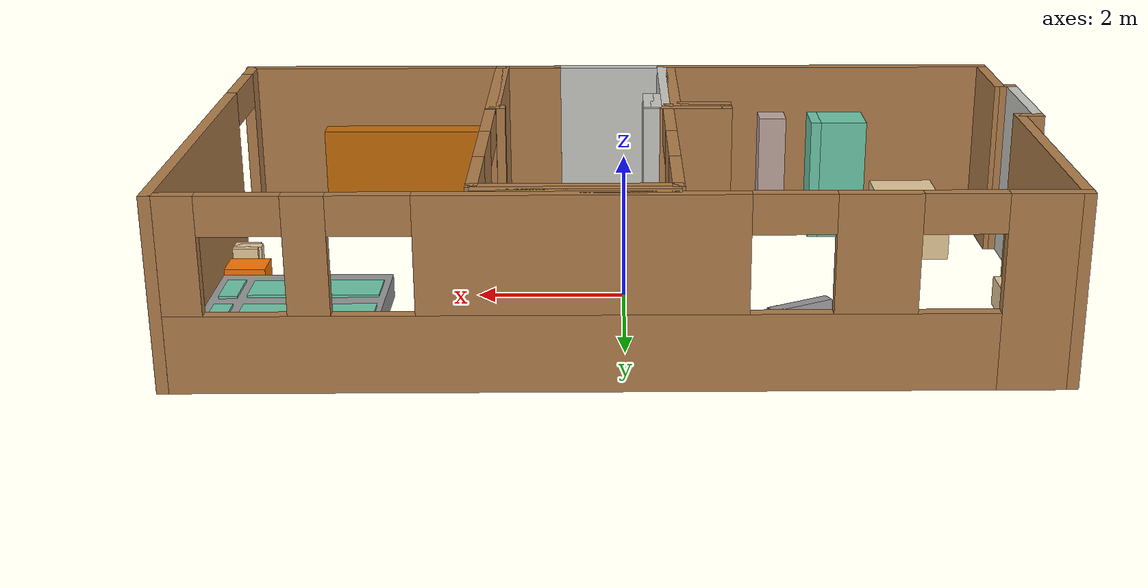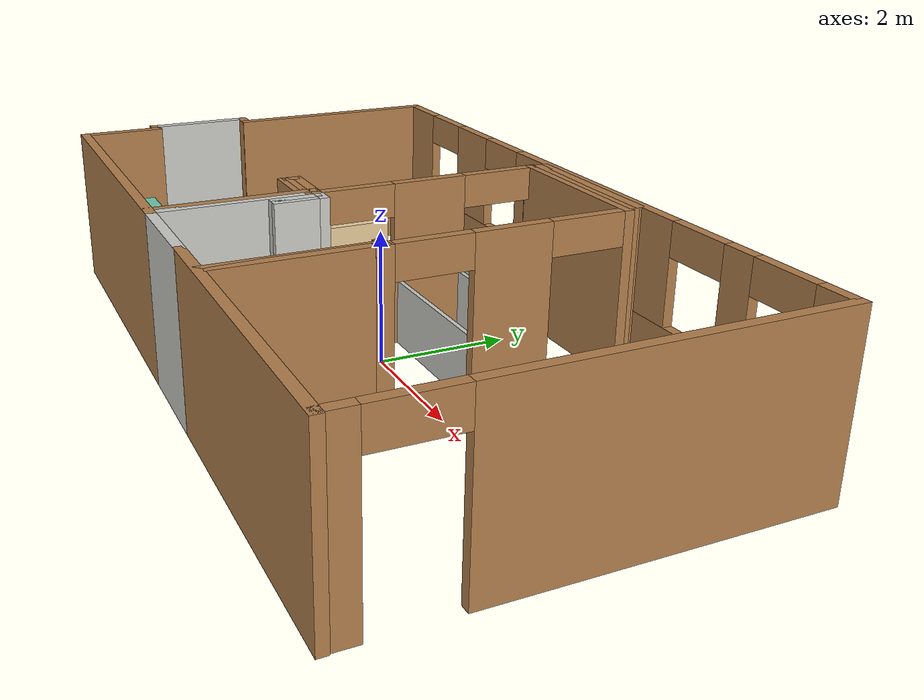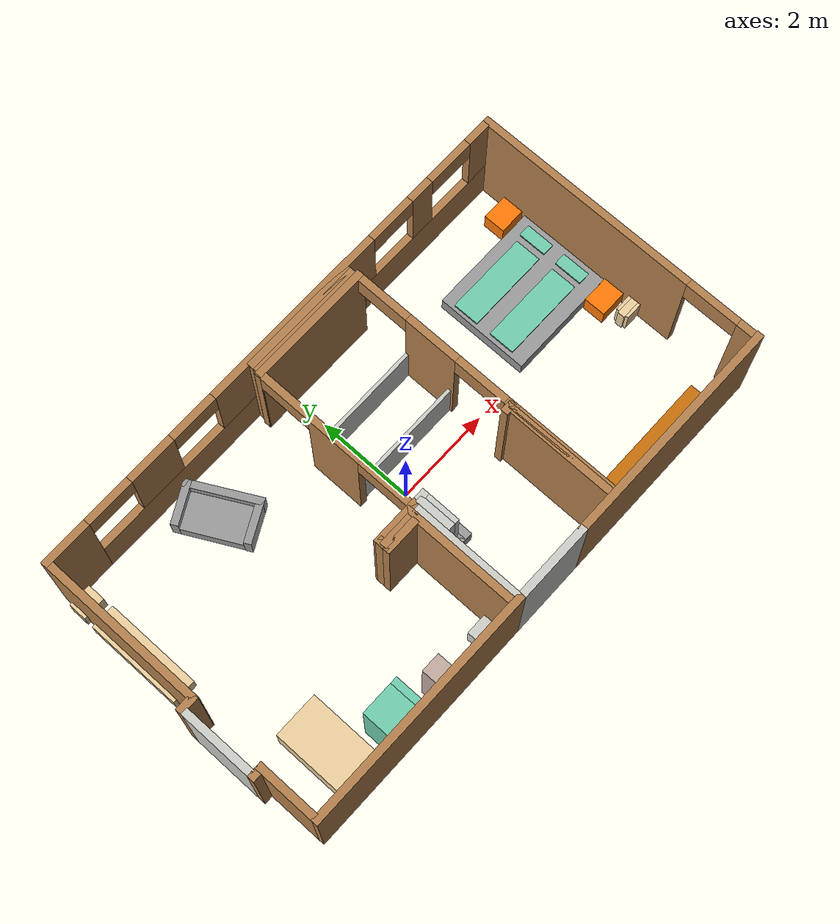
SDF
<?xml version='1.0'?>
<sdf version='1.6'>
  <model name='Untitledt1'>
    <model name='Einrichtung'>
      <pose frame=''>0.0228 -0.002714 0 0 -0 0</pose>
      <link name='Wall_0'>
        <collision name='Wall_0_Collision'>
          <geometry>
            <box>
              <size>1.673 0.94 0.7</size>
            </box>
          </geometry>
          <pose frame=''>0 0 0.35 0 -0 0</pose>
        </collision>
        <visual name='Wall_0_Visual'>
          <pose frame=''>0 0 0.35 0 -0 0</pose>
          <geometry>
            <box>
              <size>1.673 0.94 0.7</size>
            </box>
          </geometry>
          <material>
            <script>
              <uri>file://media/materials/scripts/gazebo.material</uri>
              <name>Gazebo/Grey</name>
            </script>
            <ambient>0.921569 0.807843 0.615686 1</ambient>
          </material>
        </visual>
        <pose frame=''>-4.33917 -2.21172 0 0 0 -1.5708</pose>
      </link>
      <link name='Wall_10'>
        <collision name='Wall_10_Collision'>
          <geometry>
            <box>
              <size>0.48 0.37 0.45</size>
            </box>
          </geometry>
          <pose frame=''>0 0 0.225 0 -0 0</pose>
        </collision>
        <visual name='Wall_10_Visual'>
          <pose frame=''>0 0 0.225 0 -0 0</pose>
          <geometry>
            <box>
              <size>0.48 0.37 0.45</size>
            </box>
          </geometry>
          <material>
            <script>
              <uri>file://media/materials/scripts/gazebo.material</uri>
              <name>Gazebo/Grey</name>
            </script>
            <ambient>0.921569 0.807843 0.615686 1</ambient>
          </material>
        </visual>
        <pose frame=''>-5.31933 2.73109 0 0 -0 0</pose>
      </link>
      <link name='Wall_12'>
        <collision name='Wall_12_Collision'>
          <geometry>
            <box>
              <size>1.49371 0.88 0.3</size>
            </box>
          </geometry>
          <pose frame=''>0 0 0.15 0 -0 0</pose>
        </collision>
        <visual name='Wall_12_Visual'>
          <pose frame=''>0 0 0.15 0 -0 0</pose>
          <geometry>
            <box>
              <size>1.49371 0.88 0.3</size>
            </box>
          </geometry>
          <material>
            <script>
              <uri>file://media/materials/scripts/gazebo.material</uri>
              <name>Gazebo/Grey</name>
            </script>
            <ambient>0 0 0 1</ambient>
          </material>
        </visual>
        <pose frame=''>-2.59917 2.18028 0 0 0 -1.08601</pose>
      </link>
      <link name='Wall_14'>
        <collision name='Wall_14_Collision'>
          <geometry>
            <box>
              <size>0.893776 0.15 0.5</size>
            </box>
          </geometry>
          <pose frame=''>0 0 0.25 0 -0 0</pose>
        </collision>
        <visual name='Wall_14_Visual'>
          <pose frame=''>0 0 0.25 0 -0 0</pose>
          <geometry>
            <box>
              <size>0.893776 0.15 0.5</size>
            </box>
          </geometry>
          <material>
            <script>
              <uri>file://media/materials/scripts/gazebo.material</uri>
              <name>Gazebo/Grey</name>
            </script>
            <ambient>0 0 0 1</ambient>
          </material>
        </visual>
        <pose frame=''>-2.28167 1.57728 0 0 -0 0.476275</pose>
      </link>
      <link name='Wall_17'>
        <collision name='Wall_17_Collision'>
          <geometry>
            <box>
              <size>0.875 0.15 0.5</size>
            </box>
          </geometry>
          <pose frame=''>0 0 0.25 0 -0 0</pose>
        </collision>
        <visual name='Wall_17_Visual'>
          <pose frame=''>0 0 0.25 0 -0 0</pose>
          <geometry>
            <box>
              <size>0.875 0.15 0.5</size>
            </box>
          </geometry>
          <material>
            <script>
              <uri>file://media/materials/scripts/gazebo.material</uri>
              <name>Gazebo/Grey</name>
            </script>
            <ambient>0 0 0 1</ambient>
          </material>
        </visual>
        <pose frame=''>-2.91617 2.77578 0 0 -0 0.488334</pose>
      </link>
      <link name='Wall_19'>
        <collision name='Wall_19_Collision'>
          <geometry>
            <box>
              <size>1.517 0.15 0.5</size>
            </box>
          </geometry>
          <pose frame=''>0 0 0.25 0 -0 0</pose>
        </collision>
        <visual name='Wall_19_Visual'>
          <pose frame=''>0 0 0.25 0 -0 0</pose>
          <geometry>
            <box>
              <size>1.517 0.15 0.5</size>
            </box>
          </geometry>
          <material>
            <script>
              <uri>file://media/materials/scripts/gazebo.material</uri>
              <name>Gazebo/Grey</name>
            </script>
            <ambient>0 0 0 1</ambient>
          </material>
        </visual>
        <pose frame=''>-2.26717 2.35028 0 0 0 -1.07869</pose>
      </link>
      <link name='Wall_2'>
        <collision name='Wall_2_Collision'>
          <geometry>
            <box>
              <size>0.69 0.68 1.8</size>
            </box>
          </geometry>
          <pose frame=''>0 0 0.9 0 -0 0</pose>
        </collision>
        <visual name='Wall_2_Visual'>
          <pose frame=''>0 0 0.9 0 -0 0</pose>
          <geometry>
            <box>
              <size>0.69 0.68 1.8</size>
            </box>
          </geometry>
          <material>
            <script>
              <uri>file://media/materials/scripts/gazebo.material</uri>
              <name>Gazebo/Grey</name>
            </script>
            <ambient>0.435294 0.796078 0.67451 1</ambient>
          </material>
        </visual>
        <pose frame=''>-3.34017 -2.70922 0 0 0 -1.5708</pose>
      </link>
      <link name='Wall_21'>
        <collision name='Wall_21_Collision'>
          <geometry>
            <box>
              <size>0.65 0.5 0.4</size>
            </box>
          </geometry>
          <pose frame=''>0 0 0.2 0 -0 0</pose>
        </collision>
        <visual name='Wall_21_Visual'>
          <pose frame=''>0 0 0.2 0 -0 0</pose>
          <geometry>
            <box>
              <size>0.65 0.5 0.4</size>
            </box>
          </geometry>
          <material>
            <script>
              <uri>file://media/materials/scripts/gazebo.material</uri>
              <name>Gazebo/Grey</name>
            </script>
            <ambient>1 1 1 1</ambient>
          </material>
        </visual>
        <pose frame=''>-0.100166 -1.09222 0 0 0 -1.5708</pose>
      </link>
      <link name='Wall_23'>
        <collision name='Wall_23_Collision'>
          <geometry>
            <box>
              <size>0.65 0.5 0.4</size>
            </box>
          </geometry>
          <pose frame=''>0 0 0.2 0 -0 0</pose>
        </collision>
        <visual name='Wall_23_Visual'>
          <pose frame=''>0 0 0.2 0 -0 0</pose>
          <geometry>
            <box>
              <size>0.65 0.5 0.4</size>
            </box>
          </geometry>
          <material>
            <script>
              <uri>file://media/materials/scripts/gazebo.material</uri>
              <name>Gazebo/Grey</name>
            </script>
            <ambient>1 1 1 1</ambient>
          </material>
        </visual>
        <pose frame=''>-0.256557 -1.09172 0 0 0 -1.5708</pose>
      </link>
      <link name='Wall_25'>
        <collision name='Wall_25_Collision'>
          <geometry>
            <box>
              <size>2.7 0.35 1.6</size>
            </box>
          </geometry>
          <pose frame=''>0 0 0.8 0 -0 0</pose>
        </collision>
        <visual name='Wall_25_Visual'>
          <pose frame=''>0 0 0.8 0 -0 0</pose>
          <geometry>
            <box>
              <size>2.7 0.35 1.6</size>
            </box>
          </geometry>
          <material>
            <script>
              <uri>file://media/materials/scripts/gazebo.material</uri>
              <name>Gazebo/Grey</name>
            </script>
            <ambient>0.780392 0.431373 0.0352941 1</ambient>
          </material>
        </visual>
        <pose frame=''>3.11331 -2.8453 0 0 -0 3.14159</pose>
      </link>
      <link name='Wall_27'>
        <collision name='Wall_27_Collision'>
          <geometry>
            <box>
              <size>0.63 0.45 0.4</size>
            </box>
          </geometry>
          <pose frame=''>0 0 0.2 0 -0 0</pose>
        </collision>
        <visual name='Wall_27_Visual'>
          <pose frame=''>0 0 0.2 0 -0 0</pose>
          <geometry>
            <box>
              <size>0.63 0.45 0.4</size>
            </box>
          </geometry>
          <material>
            <script>
              <uri>file://media/materials/scripts/gazebo.material</uri>
              <name>Gazebo/Grey</name>
            </script>
            <ambient>0.996078 0.47451 0.0196078 1</ambient>
          </material>
        </visual>
        <pose frame=''>5.25383 2.27678 0 0 -0 0</pose>
      </link>
      <link name='Wall_29'>
        <collision name='Wall_29_Collision'>
          <geometry>
            <box>
              <size>0.63 0.45 0.4</size>
            </box>
          </geometry>
          <pose frame=''>0 0 0.2 0 -0 0</pose>
        </collision>
        <visual name='Wall_29_Visual'>
          <pose frame=''>0 0 0.2 0 -0 0</pose>
          <geometry>
            <box>
              <size>0.63 0.45 0.4</size>
            </box>
          </geometry>
          <material>
            <script>
              <uri>file://media/materials/scripts/gazebo.material</uri>
              <name>Gazebo/Grey</name>
            </script>
            <ambient>0.996078 0.47451 0.0196078 1</ambient>
          </material>
        </visual>
        <pose frame=''>5.23486 -0.211038 0 0 -0 0</pose>
      </link>
      <link name='Wall_31'>
        <collision name='Wall_31_Collision'>
          <geometry>
            <box>
              <size>0.4 0.15 0.5</size>
            </box>
          </geometry>
          <pose frame=''>0 0 0.25 0 -0 0</pose>
        </collision>
        <visual name='Wall_31_Visual'>
          <pose frame=''>0 0 0.25 0 -0 0</pose>
          <geometry>
            <box>
              <size>0.4 0.15 0.5</size>
            </box>
          </geometry>
          <material>
            <script>
              <uri>file://media/materials/scripts/gazebo.material</uri>
              <name>Gazebo/Grey</name>
            </script>
            <ambient>0.921569 0.807843 0.615686 1</ambient>
          </material>
        </visual>
        <pose frame=''>5.32594 -0.631011 0 0 -0 0</pose>
      </link>
      <link name='Wall_34'>
        <collision name='Wall_34_Collision'>
          <geometry>
            <box>
              <size>0.45 0.15 0.5</size>
            </box>
          </geometry>
          <pose frame=''>0 0 0.25 0 -0 0</pose>
        </collision>
        <visual name='Wall_34_Visual'>
          <pose frame=''>0 0 0.25 0 -0 0</pose>
          <geometry>
            <box>
              <size>0.45 0.15 0.5</size>
            </box>
          </geometry>
          <material>
            <script>
              <uri>file://media/materials/scripts/gazebo.material</uri>
              <name>Gazebo/Grey</name>
            </script>
            <ambient>0.921569 0.807843 0.615686 1</ambient>
          </material>
        </visual>
        <pose frame=''>5.31146 -0.693763 0 0 -0 0</pose>
      </link>
      <link name='Wall_36'>
        <collision name='Wall_36_Collision'>
          <geometry>
            <box>
              <size>0.4 0.15 0.5</size>
            </box>
          </geometry>
          <pose frame=''>0 0 0.25 0 -0 0</pose>
        </collision>
        <visual name='Wall_36_Visual'>
          <pose frame=''>0 0 0.25 0 -0 0</pose>
          <geometry>
            <box>
              <size>0.4 0.15 0.5</size>
            </box>
          </geometry>
          <material>
            <script>
              <uri>file://media/materials/scripts/gazebo.material</uri>
              <name>Gazebo/Grey</name>
            </script>
            <ambient>0.921569 0.807843 0.615686 1</ambient>
          </material>
        </visual>
        <pose frame=''>5.32583 -0.756216 0 0 -0 0</pose>
      </link>
      <link name='Wall_38'>
        <collision name='Wall_38_Collision'>
          <geometry>
            <box>
              <size>2.4 1.95 0.33</size>
            </box>
          </geometry>
          <pose frame=''>0 0 0.165 0 -0 0</pose>
        </collision>
        <visual name='Wall_38_Visual'>
          <pose frame=''>0 0 0.165 0 -0 0</pose>
          <geometry>
            <box>
              <size>2.4 1.95 0.33</size>
            </box>
          </geometry>
          <material>
            <script>
              <uri>file://media/materials/scripts/gazebo.material</uri>
              <name>Gazebo/Grey</name>
            </script>
            <ambient>1 1 1 1</ambient>
          </material>
        </visual>
        <pose frame=''>4.34983 1.00478 0 0 -0 0</pose>
      </link>
      <link name='Wall_4'>
        <collision name='Wall_4_Collision'>
          <geometry>
            <box>
              <size>0.69 0.15 1.8</size>
            </box>
          </geometry>
          <pose frame=''>0 0 0.9 0 -0 0</pose>
        </collision>
        <visual name='Wall_4_Visual'>
          <pose frame=''>0 0 0.9 0 -0 0</pose>
          <geometry>
            <box>
              <size>0.69 0.15 1.8</size>
            </box>
          </geometry>
          <material>
            <script>
              <uri>file://media/materials/scripts/gazebo.material</uri>
              <name>Gazebo/Grey</name>
            </script>
            <ambient>0.435294 0.796078 0.67451 1</ambient>
          </material>
        </visual>
        <pose frame=''>-2.92817 -2.70922 0 0 0 -1.5708</pose>
      </link>
      <link name='Wall_40'>
        <collision name='Wall_40_Collision'>
          <geometry>
            <box>
              <size>0.6 0.25 0.365</size>
            </box>
          </geometry>
          <pose frame=''>0 0 0.1825 0 -0 0</pose>
        </collision>
        <visual name='Wall_40_Visual'>
          <pose frame=''>0 0 0.1825 0 -0 0</pose>
          <geometry>
            <box>
              <size>0.6 0.25 0.365</size>
            </box>
          </geometry>
          <material>
            <script>
              <uri>file://media/materials/scripts/gazebo.material</uri>
              <name>Gazebo/Grey</name>
            </script>
            <ambient>0.435294 0.796078 0.67451 1</ambient>
          </material>
        </visual>
        <pose frame=''>5.23283 1.48278 0 0 0 -1.5708</pose>
      </link>
      <link name='Wall_42'>
        <collision name='Wall_42_Collision'>
          <geometry>
            <box>
              <size>0.6 0.25 0.365</size>
            </box>
          </geometry>
          <pose frame=''>0 0 0.1825 0 -0 0</pose>
        </collision>
        <visual name='Wall_42_Visual'>
          <pose frame=''>0 0 0.1825 0 -0 0</pose>
          <geometry>
            <box>
              <size>0.6 0.25 0.365</size>
            </box>
          </geometry>
          <material>
            <script>
              <uri>file://media/materials/scripts/gazebo.material</uri>
              <name>Gazebo/Grey</name>
            </script>
            <ambient>0.435294 0.796078 0.67451 1</ambient>
          </material>
        </visual>
        <pose frame=''>5.23783 0.607784 0 0 0 -1.5708</pose>
      </link>
      <link name='Wall_44'>
        <collision name='Wall_44_Collision'>
          <geometry>
            <box>
              <size>1.75 0.55 0.365</size>
            </box>
          </geometry>
          <pose frame=''>0 0 0.1825 0 -0 0</pose>
        </collision>
        <visual name='Wall_44_Visual'>
          <pose frame=''>0 0 0.1825 0 -0 0</pose>
          <geometry>
            <box>
              <size>1.75 0.55 0.365</size>
            </box>
          </geometry>
          <material>
            <script>
              <uri>file://media/materials/scripts/gazebo.material</uri>
              <name>Gazebo/Grey</name>
            </script>
            <ambient>0.435294 0.796078 0.67451 1</ambient>
          </material>
        </visual>
        <pose frame=''>4.09776 1.45828 0 0 -0 0</pose>
      </link>
      <link name='Wall_46'>
        <collision name='Wall_46_Collision'>
          <geometry>
            <box>
              <size>1.75 0.55 0.365</size>
            </box>
          </geometry>
          <pose frame=''>0 0 0.1825 0 -0 0</pose>
        </collision>
        <visual name='Wall_46_Visual'>
          <pose frame=''>0 0 0.1825 0 -0 0</pose>
          <geometry>
            <box>
              <size>1.75 0.55 0.365</size>
            </box>
          </geometry>
          <material>
            <script>
              <uri>file://media/materials/scripts/gazebo.material</uri>
              <name>Gazebo/Grey</name>
            </script>
            <ambient>0.435294 0.796078 0.67451 1</ambient>
          </material>
        </visual>
        <pose frame=''>4.114 0.601834 0 0 -0 0</pose>
      </link>
      <link name='Wall_6'>
        <collision name='Wall_6_Collision'>
          <geometry>
            <box>
              <size>0.44 0.4 1.8</size>
            </box>
          </geometry>
          <pose frame=''>0 0 0.9 0 -0 0</pose>
        </collision>
        <visual name='Wall_6_Visual'>
          <pose frame=''>0 0 0.9 0 -0 0</pose>
          <geometry>
            <box>
              <size>0.44 0.4 1.8</size>
            </box>
          </geometry>
          <material>
            <script>
              <uri>file://media/materials/scripts/gazebo.material</uri>
              <name>Gazebo/Grey</name>
            </script>
            <ambient>0.760784 0.662745 0.627451 1</ambient>
          </material>
        </visual>
        <pose frame=''>-2.30017 -2.83422 0 0 0 -1.5708</pose>
      </link>
      <link name='Wall_8'>
        <collision name='Wall_8_Collision'>
          <geometry>
            <box>
              <size>1.989 0.51 0.4</size>
            </box>
          </geometry>
          <pose frame=''>0 0 0.2 0 -0 0</pose>
        </collision>
        <visual name='Wall_8_Visual'>
          <pose frame=''>0 0 0.2 0 -0 0</pose>
          <geometry>
            <box>
              <size>1.989 0.51 0.4</size>
            </box>
          </geometry>
          <material>
            <script>
              <uri>file://media/materials/scripts/gazebo.material</uri>
              <name>Gazebo/Grey</name>
            </script>
            <ambient>0.921569 0.807843 0.615686 1</ambient>
          </material>
        </visual>
        <pose frame=''>-5.31383 1.36744 0 0 0 -1.5708</pose>
      </link>
      <static>1</static>
    </model>
    <model name='mapv2final'>
      <pose frame=''>-0.0228 0.002714 0 0 -0 0</pose>
      <link name='Wall_0'>
        <collision name='Wall_0_Collision'>
          <geometry>
            <box>
              <size>3.5 0.15 2.5</size>
            </box>
          </geometry>
          <pose frame=''>0 0 1.25 0 -0 0</pose>
        </collision>
        <visual name='Wall_0_Visual'>
          <pose frame=''>0 0 1.25 0 -0 0</pose>
          <geometry>
            <box>
              <size>3.5 0.15 2.5</size>
            </box>
          </geometry>
          <material>
            <script>
              <uri>file://media/materials/scripts/gazebo.material</uri>
              <name>Gazebo/Wood</name>
            </script>
            <ambient>1 1 1 1</ambient>
          </material>
        </visual>
        <pose frame=''>-5.37219 1.40563 0 0 0 -1.5708</pose>
      </link>
      <link name='Wall_100'>
        <collision name='Wall_100_Collision'>
          <geometry>
            <box>
              <size>2.584 0.15 2.5</size>
            </box>
          </geometry>
          <pose frame=''>0 0 1.25 0 -0 0</pose>
        </collision>
        <visual name='Wall_100_Visual'>
          <pose frame=''>0 0 1.25 0 -0 0</pose>
          <geometry>
            <box>
              <size>2.584 0.15 2.5</size>
            </box>
          </geometry>
          <material>
            <script>
              <uri>file://media/materials/scripts/gazebo.material</uri>
              <name>Gazebo/Wood</name>
            </script>
            <ambient>1 1 1 1</ambient>
          </material>
        </visual>
        <pose frame=''>0.636053 2.77762 0 0 -0 0</pose>
      </link>
      <link name='Wall_109'>
        <collision name='Wall_109_Collision'>
          <geometry>
            <box>
              <size>5 0.15 2.5</size>
            </box>
          </geometry>
          <pose frame=''>0 0 1.25 0 -0 0</pose>
        </collision>
        <visual name='Wall_109_Visual'>
          <pose frame=''>0 0 1.25 0 -0 0</pose>
          <geometry>
            <box>
              <size>5 0.15 2.5</size>
            </box>
          </geometry>
          <material>
            <script>
              <uri>file://media/materials/scripts/gazebo.material</uri>
              <name>Gazebo/Wood</name>
            </script>
            <ambient>1 1 1 1</ambient>
          </material>
        </visual>
        <pose frame=''>-3.02071 -3.08064 0 0 -0 0</pose>
      </link>
      <link name='Wall_113'>
        <collision name='Wall_113_Collision'>
          <geometry>
            <box>
              <size>0.65 0.45 0.5</size>
            </box>
          </geometry>
          <pose frame=''>0 0 0.25 0 -0 0</pose>
        </collision>
        <visual name='Wall_113_Visual'>
          <pose frame=''>0 0 0.25 0 -0 0</pose>
          <geometry>
            <box>
              <size>0.65 0.45 0.5</size>
            </box>
          </geometry>
          <material>
            <script>
              <uri>file://media/materials/scripts/gazebo.material</uri>
              <name>Gazebo/CeilingTiled</name>
            </script>
            <ambient>1 1 1 1</ambient>
          </material>
        </visual>
        <pose frame=''>-0.89319 -2.80513 0 0 -0 0</pose>
      </link>
      <link name='Wall_118'>
        <collision name='Wall_118_Collision'>
          <geometry>
            <box>
              <size>2.483 0.15 2.5</size>
            </box>
          </geometry>
          <pose frame=''>0 0 1.25 0 -0 0</pose>
        </collision>
        <visual name='Wall_118_Visual'>
          <pose frame=''>0 0 1.25 0 -0 0</pose>
          <geometry>
            <box>
              <size>2.483 0.15 2.5</size>
            </box>
          </geometry>
          <material>
            <script>
              <uri>file://media/materials/scripts/gazebo.material</uri>
              <name>Gazebo/Wood</name>
            </script>
            <ambient>1 1 1 1</ambient>
          </material>
        </visual>
        <pose frame=''>-0.708947 -1.91388 0 0 0 -1.5708</pose>
      </link>
      <link name='Wall_120'>
        <collision name='Wall_120_Collision'>
          <geometry>
            <box>
              <size>1 0.15 2.5</size>
            </box>
          </geometry>
          <pose frame=''>0 0 1.25 0 -0 0</pose>
        </collision>
        <visual name='Wall_120_Visual'>
          <pose frame=''>0 0 1.25 0 -0 0</pose>
          <geometry>
            <box>
              <size>1 0.15 2.5</size>
            </box>
          </geometry>
          <material>
            <script>
              <uri>file://media/materials/scripts/gazebo.material</uri>
              <name>Gazebo/Wood</name>
            </script>
            <ambient>1 1 1 1</ambient>
          </material>
        </visual>
        <pose frame=''>-0.984188 -0.723393 0 0 -0 3.14159</pose>
      </link>
      <link name='Wall_122'>
        <collision name='Wall_122_Collision'>
          <geometry>
            <box>
              <size>0.25 0.15 2.5</size>
            </box>
          </geometry>
          <pose frame=''>0 0 1.25 0 -0 0</pose>
        </collision>
        <visual name='Wall_122_Visual'>
          <pose frame=''>0 0 1.25 0 -0 0</pose>
          <geometry>
            <box>
              <size>0.25 0.15 2.5</size>
            </box>
          </geometry>
          <material>
            <script>
              <uri>file://media/materials/scripts/gazebo.material</uri>
              <name>Gazebo/Wood</name>
            </script>
            <ambient>1 1 1 1</ambient>
          </material>
        </visual>
        <pose frame=''>-1.40957 -0.813699 0 0 0 -1.5708</pose>
      </link>
      <link name='Wall_124'>
        <collision name='Wall_124_Collision'>
          <geometry>
            <box>
              <size>0.75 0.15 2.5</size>
            </box>
          </geometry>
          <pose frame=''>0 0 1.25 0 -0 0</pose>
        </collision>
        <visual name='Wall_124_Visual'>
          <pose frame=''>0 0 1.25 0 -0 0</pose>
          <geometry>
            <box>
              <size>0.75 0.15 2.5</size>
            </box>
          </geometry>
          <material>
            <script>
              <uri>file://media/materials/scripts/gazebo.material</uri>
              <name>Gazebo/Wood</name>
            </script>
            <ambient>1 1 1 1</ambient>
          </material>
        </visual>
        <pose frame=''>-1.10967 -0.926719 0 0 -0 0</pose>
      </link>
      <link name='Wall_126'>
        <collision name='Wall_126_Collision'>
          <geometry>
            <box>
              <size>0.75 0.15 2.5</size>
            </box>
          </geometry>
          <pose frame=''>0 0 1.25 0 -0 0</pose>
        </collision>
        <visual name='Wall_126_Visual'>
          <pose frame=''>0 0 1.25 0 -0 0</pose>
          <geometry>
            <box>
              <size>0.75 0.15 2.5</size>
            </box>
          </geometry>
          <material>
            <script>
              <uri>file://media/materials/scripts/gazebo.material</uri>
              <name>Gazebo/Wood</name>
            </script>
            <ambient>1 1 1 1</ambient>
          </material>
        </visual>
        <pose frame=''>-1.07357 -0.830342 0 0 -0 0</pose>
      </link>
      <link name='Wall_134'>
        <collision name='Wall_134_Collision'>
          <geometry>
            <box>
              <size>2.291 0.15 2.5</size>
            </box>
          </geometry>
          <pose frame=''>0 0 1.25 0 -0 0</pose>
        </collision>
        <visual name='Wall_134_Visual'>
          <pose frame=''>0 0 1.25 0 -0 0</pose>
          <geometry>
            <box>
              <size>2.291 0.15 2.5</size>
            </box>
          </geometry>
          <material>
            <script>
              <uri>file://media/materials/scripts/gazebo.material</uri>
              <name>Gazebo/CeilingTiled</name>
            </script>
            <ambient>1 1 1 1</ambient>
          </material>
        </visual>
        <pose frame=''>-0.588826 -1.93182 0 0 -0 1.5708</pose>
      </link>
      <link name='Wall_137'>
        <collision name='Wall_137_Collision'>
          <geometry>
            <box>
              <size>1.75 0.15 2.5</size>
            </box>
          </geometry>
          <pose frame=''>0 0 1.25 0 -0 0</pose>
        </collision>
        <visual name='Wall_137_Visual'>
          <pose frame=''>0 0 1.25 0 -0 0</pose>
          <geometry>
            <box>
              <size>1.75 0.15 2.5</size>
            </box>
          </geometry>
          <material>
            <script>
              <uri>file://media/materials/scripts/gazebo.material</uri>
              <name>Gazebo/CeilingTiled</name>
            </script>
            <ambient>1 1 1 1</ambient>
          </material>
        </visual>
        <pose frame=''>0.171959 -3.08042 0 0 -0 0</pose>
      </link>
      <link name='Wall_140'>
        <collision name='Wall_140_Collision'>
          <geometry>
            <box>
              <size>0.25 0.15 2.5</size>
            </box>
          </geometry>
          <pose frame=''>0 0 1.25 0 -0 0</pose>
        </collision>
        <visual name='Wall_140_Visual'>
          <pose frame=''>0 0 1.25 0 -0 0</pose>
          <geometry>
            <box>
              <size>0.25 0.15 2.5</size>
            </box>
          </geometry>
          <material>
            <script>
              <uri>file://media/materials/scripts/gazebo.material</uri>
              <name>Gazebo/CeilingTiled</name>
            </script>
            <ambient>1 1 1 1</ambient>
          </material>
        </visual>
        <pose frame=''>-0.386516 -0.723437 0 0 -0 0</pose>
      </link>
      <link name='Wall_142'>
        <collision name='Wall_142_Collision'>
          <geometry>
            <box>
              <size>0.25 0.15 0.5</size>
            </box>
          </geometry>
          <pose frame=''>0 0 0.25 0 -0 0</pose>
        </collision>
        <visual name='Wall_142_Visual'>
          <pose frame=''>0 0 0.25 0 -0 0</pose>
          <geometry>
            <box>
              <size>0.25 0.15 0.5</size>
            </box>
          </geometry>
          <material>
            <script>
              <uri>file://media/materials/scripts/gazebo.material</uri>
              <name>Gazebo/CeilingTiled</name>
            </script>
            <ambient>1 1 1 1</ambient>
          </material>
        </visual>
        <pose frame=''>1.06405 -2.94338 0 0 0 -1.5708</pose>
      </link>
      <link name='Wall_145'>
        <collision name='Wall_145_Collision'>
          <geometry>
            <box>
              <size>4.75 0.15 2.5</size>
            </box>
          </geometry>
          <pose frame=''>0 0 1.25 0 -0 0</pose>
        </collision>
        <visual name='Wall_145_Visual'>
          <pose frame=''>0 0 1.25 0 -0 0</pose>
          <geometry>
            <box>
              <size>4.75 0.15 2.5</size>
            </box>
          </geometry>
          <material>
            <script>
              <uri>file://media/materials/scripts/gazebo.material</uri>
              <name>Gazebo/Wood</name>
            </script>
            <ambient>1 1 1 1</ambient>
          </material>
        </visual>
        <pose frame=''>3.31994 -3.07993 0 0 -0 0</pose>
      </link>
      <link name='Wall_147'>
        <collision name='Wall_147_Collision'>
          <geometry>
            <box>
              <size>2.461 0.15 2.5</size>
            </box>
          </geometry>
          <pose frame=''>0 0 1.25 0 -0 0</pose>
        </collision>
        <visual name='Wall_147_Visual'>
          <pose frame=''>0 0 1.25 0 -0 0</pose>
          <geometry>
            <box>
              <size>2.461 0.15 2.5</size>
            </box>
          </geometry>
          <material>
            <script>
              <uri>file://media/materials/scripts/gazebo.material</uri>
              <name>Gazebo/Wood</name>
            </script>
            <ambient>1 1 1 1</ambient>
          </material>
        </visual>
        <pose frame=''>1.85202 -1.92166 0 0 0 -1.5708</pose>
      </link>
      <link name='Wall_149'>
        <collision name='Wall_149_Collision'>
          <geometry>
            <box>
              <size>2.454 0.15 2.5</size>
            </box>
          </geometry>
          <pose frame=''>0 0 1.25 0 -0 0</pose>
        </collision>
        <visual name='Wall_149_Visual'>
          <pose frame=''>0 0 1.25 0 -0 0</pose>
          <geometry>
            <box>
              <size>2.454 0.15 2.5</size>
            </box>
          </geometry>
          <material>
            <script>
              <uri>file://media/materials/scripts/gazebo.material</uri>
              <name>Gazebo/Wood</name>
            </script>
            <ambient>1 1 1 1</ambient>
          </material>
        </visual>
        <pose frame=''>1.79905 -1.9189 0 0 0 -1.5708</pose>
      </link>
      <link name='Wall_153'>
        <collision name='Wall_153_Collision'>
          <geometry>
            <box>
              <size>0.25 0.15 2.5</size>
            </box>
          </geometry>
          <pose frame=''>0 0 1.25 0 -0 0</pose>
        </collision>
        <visual name='Wall_153_Visual'>
          <pose frame=''>0 0 1.25 0 -0 0</pose>
          <geometry>
            <box>
              <size>0.25 0.15 2.5</size>
            </box>
          </geometry>
          <material>
            <script>
              <uri>file://media/materials/scripts/gazebo.material</uri>
              <name>Gazebo/Wood</name>
            </script>
            <ambient>1 1 1 1</ambient>
          </material>
        </visual>
        <pose frame=''>1.77917 -0.766009 0 0 -0 0</pose>
      </link>
      <link name='Wall_159'>
        <pose frame=''>5.60105 0.016123 0 0 0 -1.5708</pose>
        <visual name='Wall_159_Visual_0'>
          <pose frame=''>-0.780579 0 1.25 0 -0 0</pose>
          <geometry>
            <box>
              <size>4.71784 0.15 2.5</size>
            </box>
          </geometry>
          <material>
            <script>
              <uri>file://media/materials/scripts/gazebo.material</uri>
              <name>Gazebo/Wood</name>
            </script>
            <ambient>1 1 1 1</ambient>
          </material>
        </visual>
        <collision name='Wall_159_Collision_0'>
          <geometry>
            <box>
              <size>4.71784 0.15 2.5</size>
            </box>
          </geometry>
          <pose frame=''>-0.780579 0 1.25 0 -0 0</pose>
        </collision>
        <visual name='Wall_159_Visual_1'>
          <pose frame=''>2.91392 0 1.25 0 -0 0</pose>
          <geometry>
            <box>
              <size>0.451159 0.15 2.5</size>
            </box>
          </geometry>
          <material>
            <script>
              <uri>file://media/materials/scripts/gazebo.material</uri>
              <name>Gazebo/Wood</name>
            </script>
            <ambient>1 1 1 1</ambient>
          </material>
        </visual>
        <collision name='Wall_159_Collision_1'>
          <geometry>
            <box>
              <size>0.451159 0.15 2.5</size>
            </box>
          </geometry>
          <pose frame=''>2.91392 0 1.25 0 -0 0</pose>
        </collision>
        <visual name='Wall_159_Visual_2'>
          <pose frame=''>2.13334 0 2.25 0 -0 0</pose>
          <geometry>
            <box>
              <size>1.11 0.15 0.5</size>
            </box>
          </geometry>
          <material>
            <script>
              <uri>file://media/materials/scripts/gazebo.material</uri>
              <name>Gazebo/Wood</name>
            </script>
            <ambient>1 1 1 1</ambient>
          </material>
        </visual>
        <collision name='Wall_159_Collision_2'>
          <geometry>
            <box>
              <size>1.11 0.15 0.5</size>
            </box>
          </geometry>
          <pose frame=''>2.13334 0 2.25 0 -0 0</pose>
        </collision>
      </link>
      <link name='Wall_177'>
        <pose frame=''>1.8521 0.956666 0 0 0 -1.5708</pose>
        <visual name='Wall_177_Visual_0'>
          <pose frame=''>-1.80595 0 1.25 0 -0 0</pose>
          <geometry>
            <box>
              <size>0.112099 0.15 2.5</size>
            </box>
          </geometry>
          <material>
            <script>
              <uri>file://media/materials/scripts/gazebo.material</uri>
              <name>Gazebo/Wood</name>
            </script>
            <ambient>1 1 1 1</ambient>
          </material>
        </visual>
        <collision name='Wall_177_Collision_0'>
          <geometry>
            <box>
              <size>0.112099 0.15 2.5</size>
            </box>
          </geometry>
          <pose frame=''>-1.80595 0 1.25 0 -0 0</pose>
        </collision>
        <visual name='Wall_177_Visual_1'>
          <pose frame=''>-0.069429 0 1.25 0 -0 0</pose>
          <geometry>
            <box>
              <size>1.14094 0.15 2.5</size>
            </box>
          </geometry>
          <material>
            <script>
              <uri>file://media/materials/scripts/gazebo.material</uri>
              <name>Gazebo/Wood</name>
            </script>
            <ambient>1 1 1 1</ambient>
          </material>
        </visual>
        <collision name='Wall_177_Collision_1'>
          <geometry>
            <box>
              <size>1.14094 0.15 2.5</size>
            </box>
          </geometry>
          <pose frame=''>-0.069429 0 1.25 0 -0 0</pose>
        </collision>
        <visual name='Wall_177_Visual_2'>
          <pose frame=''>1.73652 0 1.25 0 -0 0</pose>
          <geometry>
            <box>
              <size>0.250957 0.15 2.5</size>
            </box>
          </geometry>
          <material>
            <script>
              <uri>file://media/materials/scripts/gazebo.material</uri>
              <name>Gazebo/Wood</name>
            </script>
            <ambient>1 1 1 1</ambient>
          </material>
        </visual>
        <collision name='Wall_177_Collision_2'>
          <geometry>
            <box>
              <size>0.250957 0.15 2.5</size>
            </box>
          </geometry>
          <pose frame=''>1.73652 0 1.25 0 -0 0</pose>
        </collision>
        <visual name='Wall_177_Visual_3'>
          <pose frame=''>-1.1949 0 2.25 0 -0 0</pose>
          <geometry>
            <box>
              <size>1.11 0.15 0.5</size>
            </box>
          </geometry>
          <material>
            <script>
              <uri>file://media/materials/scripts/gazebo.material</uri>
              <name>Gazebo/Wood</name>
            </script>
            <ambient>1 1 1 1</ambient>
          </material>
        </visual>
        <collision name='Wall_177_Collision_3'>
          <geometry>
            <box>
              <size>1.11 0.15 0.5</size>
            </box>
          </geometry>
          <pose frame=''>-1.1949 0 2.25 0 -0 0</pose>
        </collision>
        <visual name='Wall_177_Visual_4'>
          <pose frame=''>1.05604 0 2.25 0 -0 0</pose>
          <geometry>
            <box>
              <size>1.11 0.15 0.5</size>
            </box>
          </geometry>
          <material>
            <script>
              <uri>file://media/materials/scripts/gazebo.material</uri>
              <name>Gazebo/Wood</name>
            </script>
            <ambient>1 1 1 1</ambient>
          </material>
        </visual>
        <collision name='Wall_177_Collision_4'>
          <geometry>
            <box>
              <size>1.11 0.15 0.5</size>
            </box>
          </geometry>
          <pose frame=''>1.05604 0 2.25 0 -0 0</pose>
        </collision>
      </link>
      <link name='Wall_179'>
        <pose frame=''>-0.600628 0.978015 0 0 0 -1.5708</pose>
        <visual name='Wall_179_Visual_0'>
          <pose frame=''>-1.80313 0 1.25 0 -0 0</pose>
          <geometry>
            <box>
              <size>0.143736 0.15 2.5</size>
            </box>
          </geometry>
          <material>
            <script>
              <uri>file://media/materials/scripts/gazebo.material</uri>
              <name>Gazebo/Wood</name>
            </script>
            <ambient>1 1 1 1</ambient>
          </material>
        </visual>
        <collision name='Wall_179_Collision_0'>
          <geometry>
            <box>
              <size>0.143736 0.15 2.5</size>
            </box>
          </geometry>
          <pose frame=''>-1.80313 0 1.25 0 -0 0</pose>
        </collision>
        <visual name='Wall_179_Visual_1'>
          <pose frame=''>-0.049294 0 1.25 0 -0 0</pose>
          <geometry>
            <box>
              <size>1.14394 0.15 2.5</size>
            </box>
          </geometry>
          <material>
            <script>
              <uri>file://media/materials/scripts/gazebo.material</uri>
              <name>Gazebo/Wood</name>
            </script>
            <ambient>1 1 1 1</ambient>
          </material>
        </visual>
        <collision name='Wall_179_Collision_1'>
          <geometry>
            <box>
              <size>1.14394 0.15 2.5</size>
            </box>
          </geometry>
          <pose frame=''>-0.049294 0 1.25 0 -0 0</pose>
        </collision>
        <visual name='Wall_179_Visual_2'>
          <pose frame=''>1.75384 0 1.25 0 -0 0</pose>
          <geometry>
            <box>
              <size>0.242325 0.15 2.5</size>
            </box>
          </geometry>
          <material>
            <script>
              <uri>file://media/materials/scripts/gazebo.material</uri>
              <name>Gazebo/Wood</name>
            </script>
            <ambient>1 1 1 1</ambient>
          </material>
        </visual>
        <collision name='Wall_179_Collision_2'>
          <geometry>
            <box>
              <size>0.242325 0.15 2.5</size>
            </box>
          </geometry>
          <pose frame=''>1.75384 0 1.25 0 -0 0</pose>
        </collision>
        <visual name='Wall_179_Visual_3'>
          <pose frame=''>-1.17626 0 2.25 0 -0 0</pose>
          <geometry>
            <box>
              <size>1.11 0.15 0.5</size>
            </box>
          </geometry>
          <material>
            <script>
              <uri>file://media/materials/scripts/gazebo.material</uri>
              <name>Gazebo/Wood</name>
            </script>
            <ambient>1 1 1 1</ambient>
          </material>
        </visual>
        <collision name='Wall_179_Collision_3'>
          <geometry>
            <box>
              <size>1.11 0.15 0.5</size>
            </box>
          </geometry>
          <pose frame=''>-1.17626 0 2.25 0 -0 0</pose>
        </collision>
        <visual name='Wall_179_Visual_4'>
          <pose frame=''>1.07767 0 2.25 0 -0 0</pose>
          <geometry>
            <box>
              <size>1.11 0.15 0.5</size>
            </box>
          </geometry>
          <material>
            <script>
              <uri>file://media/materials/scripts/gazebo.material</uri>
              <name>Gazebo/Wood</name>
            </script>
            <ambient>1 1 1 1</ambient>
          </material>
        </visual>
        <collision name='Wall_179_Collision_4'>
          <geometry>
            <box>
              <size>1.11 0.15 0.5</size>
            </box>
          </geometry>
          <pose frame=''>1.07767 0 2.25 0 -0 0</pose>
        </collision>
      </link>
      <link name='Wall_188'>
        <collision name='Wall_188_Collision'>
          <geometry>
            <box>
              <size>2.42 0.07 1</size>
            </box>
          </geometry>
          <pose frame=''>0 0 0.5 0 -0 0</pose>
        </collision>
        <visual name='Wall_188_Visual'>
          <pose frame=''>0 0 0.5 0 -0 0</pose>
          <geometry>
            <box>
              <size>2.42 0.07 1</size>
            </box>
          </geometry>
          <material>
            <script>
              <uri>file://media/materials/scripts/gazebo.material</uri>
              <name>Gazebo/CeilingTiled</name>
            </script>
            <ambient>1 1 1 1</ambient>
          </material>
        </visual>
        <pose frame=''>0.625053 0.541623 0 0 -0 0</pose>
      </link>
      <link name='Wall_190'>
        <collision name='Wall_190_Collision'>
          <geometry>
            <box>
              <size>2.42 0.07 1</size>
            </box>
          </geometry>
          <pose frame=''>0 0 0.5 0 -0 0</pose>
        </collision>
        <visual name='Wall_190_Visual'>
          <pose frame=''>0 0 0.5 0 -0 0</pose>
          <geometry>
            <box>
              <size>2.42 0.07 1</size>
            </box>
          </geometry>
          <material>
            <script>
              <uri>file://media/materials/scripts/gazebo.material</uri>
              <name>Gazebo/CeilingTiled</name>
            </script>
            <ambient>1 1 1 1</ambient>
          </material>
        </visual>
        <pose frame=''>0.633053 1.55662 0 0 -0 0</pose>
      </link>
      <link name='Wall_193'>
        <collision name='Wall_193_Collision'>
          <geometry>
            <box>
              <size>0.75 0.15 2.5</size>
            </box>
          </geometry>
          <pose frame=''>0 0 1.25 0 -0 0</pose>
        </collision>
        <visual name='Wall_193_Visual'>
          <pose frame=''>0 0 1.25 0 -0 0</pose>
          <geometry>
            <box>
              <size>0.75 0.15 2.5</size>
            </box>
          </geometry>
          <material>
            <script>
              <uri>file://media/materials/scripts/gazebo.material</uri>
              <name>Gazebo/CeilingTiled</name>
            </script>
            <ambient>1 1 1 1</ambient>
          </material>
        </visual>
        <pose frame=''>-0.336825 -1.08616 0 0 0 -1.5708</pose>
      </link>
      <link name='Wall_195'>
        <collision name='Wall_195_Collision'>
          <geometry>
            <box>
              <size>0.75 0.15 2.5</size>
            </box>
          </geometry>
          <pose frame=''>0 0 1.25 0 -0 0</pose>
        </collision>
        <visual name='Wall_195_Visual'>
          <pose frame=''>0 0 1.25 0 -0 0</pose>
          <geometry>
            <box>
              <size>0.75 0.15 2.5</size>
            </box>
          </geometry>
          <material>
            <script>
              <uri>file://media/materials/scripts/gazebo.material</uri>
              <name>Gazebo/CeilingTiled</name>
            </script>
            <ambient>1 1 1 1</ambient>
          </material>
        </visual>
        <pose frame=''>-0.438801 -1.08619 0 0 0 -1.5708</pose>
      </link>
      <link name='Wall_197'>
        <collision name='Wall_197_Collision'>
          <geometry>
            <box>
              <size>2.5 0.15 2.5</size>
            </box>
          </geometry>
          <pose frame=''>0 0 1.25 0 -0 0</pose>
        </collision>
        <visual name='Wall_197_Visual'>
          <pose frame=''>0 0 1.25 0 -0 0</pose>
          <geometry>
            <box>
              <size>2.5 0.15 2.5</size>
            </box>
          </geometry>
          <material>
            <script>
              <uri>file://media/materials/scripts/gazebo.material</uri>
              <name>Gazebo/Wood</name>
            </script>
            <ambient>1 1 1 1</ambient>
          </material>
        </visual>
        <pose frame=''>0.619748 2.8969 0 0 -0 0</pose>
      </link>
      <link name='Wall_199'>
        <collision name='Wall_199_Collision'>
          <geometry>
            <box>
              <size>2.5 0.15 2.5</size>
            </box>
          </geometry>
          <pose frame=''>0 0 1.25 0 -0 0</pose>
        </collision>
        <visual name='Wall_199_Visual'>
          <pose frame=''>0 0 1.25 0 -0 0</pose>
          <geometry>
            <box>
              <size>2.5 0.15 2.5</size>
            </box>
          </geometry>
          <material>
            <script>
              <uri>file://media/materials/scripts/gazebo.material</uri>
              <name>Gazebo/Wood</name>
            </script>
            <ambient>1 1 1 1</ambient>
          </material>
        </visual>
        <pose frame=''>0.619249 2.99379 0 0 -0 0</pose>
      </link>
      <link name='Wall_201'>
        <collision name='Wall_201_Collision'>
          <geometry>
            <box>
              <size>0.75 0.15 0.5</size>
            </box>
          </geometry>
          <pose frame=''>0 0 0.25 0 -0 0</pose>
        </collision>
        <visual name='Wall_201_Visual'>
          <pose frame=''>0 0 0.25 0 -0 0</pose>
          <geometry>
            <box>
              <size>0.75 0.15 0.5</size>
            </box>
          </geometry>
          <material>
            <script>
              <uri>file://media/materials/scripts/gazebo.material</uri>
              <name>Gazebo/CeilingTiled</name>
            </script>
            <ambient>1 1 1 1</ambient>
          </material>
        </visual>
        <pose frame=''>1.38105 -2.89238 0 0 -0 0</pose>
      </link>
      <link name='Wall_203'>
        <collision name='Wall_203_Collision'>
          <geometry>
            <box>
              <size>0.75 0.15 0.5</size>
            </box>
          </geometry>
          <pose frame=''>0 0 0.25 0 -0 0</pose>
        </collision>
        <visual name='Wall_203_Visual'>
          <pose frame=''>0 0 0.25 0 -0 0</pose>
          <geometry>
            <box>
              <size>0.75 0.15 0.5</size>
            </box>
          </geometry>
          <material>
            <script>
              <uri>file://media/materials/scripts/gazebo.material</uri>
              <name>Gazebo/CeilingTiled</name>
            </script>
            <ambient>1 1 1 1</ambient>
          </material>
        </visual>
        <pose frame=''>1.44405 -2.98038 0 0 -0 0</pose>
      </link>
      <link name='Wall_87'>
        <collision name='Wall_87_Collision'>
          <geometry>
            <box>
              <size>1.25 0.15 2.5</size>
            </box>
          </geometry>
          <pose frame=''>0 0 1.25 0 -0 0</pose>
        </collision>
        <visual name='Wall_87_Visual'>
          <pose frame=''>0 0 1.25 0 -0 0</pose>
          <geometry>
            <box>
              <size>1.25 0.15 2.5</size>
            </box>
          </geometry>
          <material>
            <script>
              <uri>file://media/materials/scripts/gazebo.material</uri>
              <name>Gazebo/Wood</name>
            </script>
            <ambient>1 1 1 1</ambient>
          </material>
        </visual>
        <pose frame=''>-5.44612 -2.4138 0 0 0 -1.5708</pose>
      </link>
      <link name='Wall_90'>
        <collision name='Wall_90_Collision'>
          <geometry>
            <box>
              <size>1.5 0.15 2.5</size>
            </box>
          </geometry>
          <pose frame=''>0 0 1.25 0 -0 0</pose>
        </collision>
        <visual name='Wall_90_Visual'>
          <pose frame=''>0 0 1.25 0 -0 0</pose>
          <geometry>
            <box>
              <size>1.5 0.15 2.5</size>
            </box>
          </geometry>
          <material>
            <script>
              <uri>file://media/materials/scripts/gazebo.material</uri>
              <name>Gazebo/CeilingTiled</name>
            </script>
            <ambient>1 1 1 1</ambient>
          </material>
        </visual>
        <pose frame=''>-5.61964 -1.06723 0 0 0 -1.5708</pose>
      </link>
      <link name='Wall_92'>
        <collision name='Wall_92_Collision'>
          <geometry>
            <box>
              <size>0.25 0.15 2.5</size>
            </box>
          </geometry>
          <pose frame=''>0 0 1.25 0 -0 0</pose>
        </collision>
        <visual name='Wall_92_Visual'>
          <pose frame=''>0 0 1.25 0 -0 0</pose>
          <geometry>
            <box>
              <size>0.25 0.15 2.5</size>
            </box>
          </geometry>
          <material>
            <script>
              <uri>file://media/materials/scripts/gazebo.material</uri>
              <name>Gazebo/Wood</name>
            </script>
            <ambient>1 1 1 1</ambient>
          </material>
        </visual>
        <pose frame=''>-5.5698 -1.86377 0 0 -0 0</pose>
      </link>
      <link name='Wall_96'>
        <collision name='Wall_96_Collision'>
          <geometry>
            <box>
              <size>0.381 0.15 2.5</size>
            </box>
          </geometry>
          <pose frame=''>0 0 1.25 0 -0 0</pose>
        </collision>
        <visual name='Wall_96_Visual'>
          <pose frame=''>0 0 1.25 0 -0 0</pose>
          <geometry>
            <box>
              <size>0.381 0.15 2.5</size>
            </box>
          </geometry>
          <material>
            <script>
              <uri>file://media/materials/scripts/gazebo.material</uri>
              <name>Gazebo/Wood</name>
            </script>
            <ambient>1 1 1 1</ambient>
          </material>
        </visual>
        <pose frame=''>-5.50444 -0.269377 0 0 -0 3.14159</pose>
      </link>
      <link name='Wall_98'>
        <pose frame=''>0.052943 3.08045 0 0 -0 0</pose>
        <visual name='Wall_98_Visual_0'>
          <pose frame=''>-4.99993 0 1.25 0 -0 0</pose>
          <geometry>
            <box>
              <size>1.00013 0.15 2.5</size>
            </box>
          </geometry>
          <material>
            <script>
              <uri>file://media/materials/scripts/gazebo.material</uri>
              <name>Gazebo/Wood</name>
            </script>
            <ambient>1 1 1 1</ambient>
          </material>
        </visual>
        <collision name='Wall_98_Collision_0'>
          <geometry>
            <box>
              <size>1.00013 0.15 2.5</size>
            </box>
          </geometry>
          <pose frame=''>-4.99993 0 1.25 0 -0 0</pose>
        </collision>
        <visual name='Wall_98_Visual_1'>
          <pose frame=''>0.500066 0 0.5 0 -0 0</pose>
          <geometry>
            <box>
              <size>9.99987 0.15 1</size>
            </box>
          </geometry>
          <material>
            <script>
              <uri>file://media/materials/scripts/gazebo.material</uri>
              <name>Gazebo/Wood</name>
            </script>
            <ambient>1 1 1 1</ambient>
          </material>
        </visual>
        <collision name='Wall_98_Collision_1'>
          <geometry>
            <box>
              <size>9.99987 0.15 1</size>
            </box>
          </geometry>
          <pose frame=''>0.500066 0 0.5 0 -0 0</pose>
        </collision>
        <visual name='Wall_98_Visual_2'>
          <pose frame=''>-2.9981 0 1.75 0 -0 0</pose>
          <geometry>
            <box>
              <size>1.00354 0.15 1.5</size>
            </box>
          </geometry>
          <material>
            <script>
              <uri>file://media/materials/scripts/gazebo.material</uri>
              <name>Gazebo/Wood</name>
            </script>
            <ambient>1 1 1 1</ambient>
          </material>
        </visual>
        <collision name='Wall_98_Collision_2'>
          <geometry>
            <box>
              <size>1.00354 0.15 1.5</size>
            </box>
          </geometry>
          <pose frame=''>-2.9981 0 1.75 0 -0 0</pose>
        </collision>
        <visual name='Wall_98_Visual_3'>
          <pose frame=''>0.489546 0 1.75 0 -0 0</pose>
          <geometry>
            <box>
              <size>3.97175 0.15 1.5</size>
            </box>
          </geometry>
          <material>
            <script>
              <uri>file://media/materials/scripts/gazebo.material</uri>
              <name>Gazebo/Wood</name>
            </script>
            <ambient>1 1 1 1</ambient>
          </material>
        </visual>
        <collision name='Wall_98_Collision_3'>
          <geometry>
            <box>
              <size>3.97175 0.15 1.5</size>
            </box>
          </geometry>
          <pose frame=''>0.489546 0 1.75 0 -0 0</pose>
        </collision>
        <visual name='Wall_98_Visual_4'>
          <pose frame=''>3.73231 0 1.75 0 -0 0</pose>
          <geometry>
            <box>
              <size>0.513786 0.15 1.5</size>
            </box>
          </geometry>
          <material>
            <script>
              <uri>file://media/materials/scripts/gazebo.material</uri>
              <name>Gazebo/Wood</name>
            </script>
            <ambient>1 1 1 1</ambient>
          </material>
        </visual>
        <collision name='Wall_98_Collision_4'>
          <geometry>
            <box>
              <size>0.513786 0.15 1.5</size>
            </box>
          </geometry>
          <pose frame=''>3.73231 0 1.75 0 -0 0</pose>
        </collision>
        <visual name='Wall_98_Visual_5'>
          <pose frame=''>5.2446 0 1.75 0 -0 0</pose>
          <geometry>
            <box>
              <size>0.510793 0.15 1.5</size>
            </box>
          </geometry>
          <material>
            <script>
              <uri>file://media/materials/scripts/gazebo.material</uri>
              <name>Gazebo/Wood</name>
            </script>
            <ambient>1 1 1 1</ambient>
          </material>
        </visual>
        <collision name='Wall_98_Collision_5'>
          <geometry>
            <box>
              <size>0.510793 0.15 1.5</size>
            </box>
          </geometry>
          <pose frame=''>5.2446 0 1.75 0 -0 0</pose>
        </collision>
        <visual name='Wall_98_Visual_6'>
          <pose frame=''>-3.99987 0 2.25 0 -0 0</pose>
          <geometry>
            <box>
              <size>1 0.15 0.5</size>
            </box>
          </geometry>
          <material>
            <script>
              <uri>file://media/materials/scripts/gazebo.material</uri>
              <name>Gazebo/Wood</name>
            </script>
            <ambient>1 1 1 1</ambient>
          </material>
        </visual>
        <collision name='Wall_98_Collision_6'>
          <geometry>
            <box>
              <size>1 0.15 0.5</size>
            </box>
          </geometry>
          <pose frame=''>-3.99987 0 2.25 0 -0 0</pose>
        </collision>
        <visual name='Wall_98_Visual_7'>
          <pose frame=''>-1.99633 0 2.25 0 -0 0</pose>
          <geometry>
            <box>
              <size>1 0.15 0.5</size>
            </box>
          </geometry>
          <material>
            <script>
              <uri>file://media/materials/scripts/gazebo.material</uri>
              <name>Gazebo/Wood</name>
            </script>
            <ambient>1 1 1 1</ambient>
          </material>
        </visual>
        <collision name='Wall_98_Collision_7'>
          <geometry>
            <box>
              <size>1 0.15 0.5</size>
            </box>
          </geometry>
          <pose frame=''>-1.99633 0 2.25 0 -0 0</pose>
        </collision>
        <visual name='Wall_98_Visual_8'>
          <pose frame=''>2.97542 0 2.25 0 -0 0</pose>
          <geometry>
            <box>
              <size>1 0.15 0.5</size>
            </box>
          </geometry>
          <material>
            <script>
              <uri>file://media/materials/scripts/gazebo.material</uri>
              <name>Gazebo/Wood</name>
            </script>
            <ambient>1 1 1 1</ambient>
          </material>
        </visual>
        <collision name='Wall_98_Collision_8'>
          <geometry>
            <box>
              <size>1 0.15 0.5</size>
            </box>
          </geometry>
          <pose frame=''>2.97542 0 2.25 0 -0 0</pose>
        </collision>
        <visual name='Wall_98_Visual_9'>
          <pose frame=''>4.48921 0 2.25 0 -0 0</pose>
          <geometry>
            <box>
              <size>1 0.15 0.5</size>
            </box>
          </geometry>
          <material>
            <script>
              <uri>file://media/materials/scripts/gazebo.material</uri>
              <name>Gazebo/Wood</name>
            </script>
            <ambient>1 1 1 1</ambient>
          </material>
        </visual>
        <collision name='Wall_98_Collision_9'>
          <geometry>
            <box>
              <size>1 0.15 0.5</size>
            </box>
          </geometry>
          <pose frame=''>4.48921 0 2.25 0 -0 0</pose>
        </collision>
      </link>
      <static>1</static>
    </model>
    <static>0</static>
    <allow_auto_disable>1</allow_auto_disable>
  </model>
</sdf>
